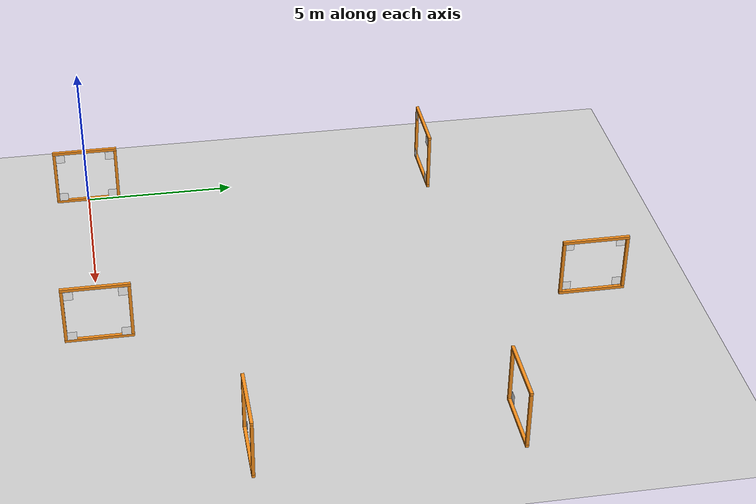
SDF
<?xml version="1.0" ?>
<sdf version="1.9">
  <world name="aruco_gate_course">
    <physics type="ode">
      <max_step_size>0.004</max_step_size>
      <real_time_factor>1.0</real_time_factor>
      <real_time_update_rate>250</real_time_update_rate>
    </physics>
    <gravity>0 0 -9.8</gravity>
    <magnetic_field>6e-06 2.3e-05 -4.2e-05</magnetic_field>
    <atmosphere type="adiabatic"/>
    <scene>
      <grid>false</grid>
      <ambient>0.4 0.4 0.4 1</ambient>
      <background>0.7 0.7 0.7 1</background>
      <shadows>true</shadows>
    </scene>

    <model name="ground_plane">
      <static>true</static>
      <link name="link">
        <collision name="collision">
          <geometry>
            <plane>
              <normal>0 0 1</normal>
              <size>1 1</size>
            </plane>
          </geometry>
          <surface>
            <friction>
              <ode/>
            </friction>
            <bounce/>
            <contact/>
          </surface>
        </collision>
        <visual name="visual">
          <geometry>
            <plane>
              <normal>0 0 1</normal>
              <size>500 500</size>
            </plane>
          </geometry>
          <material>
            <ambient>0.8 0.8 0.8 1</ambient>
            <diffuse>0.8 0.8 0.8 1</diffuse>
            <specular>0.8 0.8 0.8 1</specular>
          </material>
        </visual>
        <pose>0 0 0 0 -0 0</pose>
        <inertial>
          <pose>0 0 0 0 -0 0</pose>
          <mass>1</mass>
          <inertia>
            <ixx>1</ixx>
            <ixy>0</ixy>
            <ixz>0</ixz>
            <iyy>1</iyy>
            <iyz>0</iyz>
            <izz>1</izz>
          </inertia>
        </inertial>
        <enable_wind>false</enable_wind>
      </link>
      <pose>0 0 0 0 -0 0</pose>
      <self_collide>false</self_collide>
    </model>

    <light name="sunUTC" type="directional">
      <pose>0 0 500 0 -0 0</pose>
      <cast_shadows>true</cast_shadows>
      <intensity>1</intensity>
      <direction>0.001 0.625 -0.78</direction>
      <diffuse>0.904 0.904 0.904 1</diffuse>
      <specular>0.271 0.271 0.271 1</specular>
      <attenuation>
        <range>2000</range>
        <linear>0</linear>
        <constant>1</constant>
        <quadratic>0</quadratic>
      </attenuation>
      <spot>
        <inner_angle>0</inner_angle>
        <outer_angle>0</outer_angle>
        <falloff>0</falloff>
      </spot>
    </light>

    <spherical_coordinates>
      <surface_model>EARTH_WGS84</surface_model>
      <world_frame_orientation>ENU</world_frame_orientation>
      <latitude_deg>47.397971057728974</latitude_deg>
      <longitude_deg>8.546163739800146</longitude_deg>
      <elevation>0</elevation>
    </spherical_coordinates>

    <!-- Simple loop of ArUco gates for a basic racing line -->
    <include>
      <uri>model://aruco_gate</uri>
      <name>gate_1_start</name>
      <pose>0 0 0 0 0 0</pose>
    </include>

    <include>
      <uri>model://aruco_gate</uri>
      <name>gate_2</name>
      <pose>8 0 0 0 0 0</pose>
    </include>

    <include>
      <uri>model://aruco_gate</uri>
      <name>gate_3_turn</name>
      <pose>14 4 0 0 0 1.5708</pose>
    </include>

    <include>
      <uri>model://aruco_gate</uri>
      <name>gate_4</name>
      <pose>14 12 0 0 0 1.5708</pose>
    </include>

    <include>
      <uri>model://aruco_gate</uri>
      <name>gate_5_turn</name>
      <pose>8 16 0 0 0 3.14159</pose>
    </include>

    <include>
      <uri>model://aruco_gate</uri>
      <name>gate_6_finish</name>
      <pose>0 12 0 0 0 -1.5708</pose>
    </include>
  </world>
</sdf>

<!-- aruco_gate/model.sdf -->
<sdf version="1.9">
<model name="aruco_gate">
<static>true</static>
<link name="link">
<visual name="visual_top">
<pose>0 0 2.0 0 0 0</pose>
<geometry>
<box>
<size>0.1 2.2 0.1</size> </box>
</geometry>
<material>
<script>
<name>Gazebo/Orange</name>
<uri>file://media/materials/scripts/gazebo.material</uri>
</script>
</material>
</visual>
<collision name="collision_top">
<pose>0 0 2.0 0 0 0</pose>
<geometry>
<box><size>0.1 2.2 0.1</size></box>
</geometry>
</collision>

<visual name="visual_bottom">
<pose>0 0 0.05 0 0 0</pose>
<geometry>
<box><size>0.1 2.2 0.1</size></box>
</geometry>
<material>
<script>
<name>Gazebo/Orange</name>
<uri>file://media/materials/scripts/gazebo.material</uri>
</script>
</material>
</visual>
<collision name="collision_bottom">
<pose>0 0 0.05 0 0 0</pose>
<geometry>
<box><size>0.1 2.2 0.1</size></box>
</geometry>
</collision>

<visual name="visual_left">
<pose>0 1.05 1.025 0 0 0</pose>
<geometry>
<box><size>0.1 0.1 1.85</size></box>
</geometry>
<material>
<script>
<name>Gazebo/Orange</name>
<uri>file://media/materials/scripts/gazebo.material</uri>
</script>
</material>
</visual>
<collision name="collision_left">
<pose>0 1.05 1.025 0 0 0</pose>
<geometry>
<box><size>0.1 0.1 1.85</size></box>
</geometry>
</collision>

<visual name="visual_right">
<pose>0 -1.05 1.025 0 0 0</pose>
<geometry>
<box><size>0.1 0.1 1.85</size></box>
</geometry>
<material>
<script>
<name>Gazebo/Orange</name>
<uri>file://media/materials/scripts/gazebo.material</uri>
</script>
</material>
</visual>
<collision name="collision_right">
<pose>0 -1.05 1.025 0 0 0</pose>
<geometry>
<box><size>0.1 0.1 1.85</size></box>
</geometry>
</collision>

<visual name="marker_TL">
<pose>0.06 0.85 1.8 0 -1.57 0</pose>
<geometry>
<plane>
<normal>0 0 1</normal>
<size>0.3 0.3</size>
</plane>
</geometry>
<material>
<diffuse>1 1 1 1</diffuse>
<specular>0.1 0.1 0.1 1</specular>
<double_sided>true</double_sided>
<pbr>
<metal>
<albedo_map>model://aruco_gate/materials/textures/aruco_marker_0.png</albedo_map>
</metal>
</pbr>
</material>
</visual>

<visual name="marker_TR">
<pose>0.06 -0.85 1.8 0 -1.57 0</pose>
<geometry>
<plane>
<normal>0 0 1</normal>
<size>0.3 0.3</size>
</plane>
</geometry>
<material>
<diffuse>1 1 1 1</diffuse>
<specular>0.1 0.1 0.1 1</specular>
<double_sided>true</double_sided>
<pbr>
<metal>
<albedo_map>model://aruco_gate/materials/textures/aruco_marker_1.png</albedo_map>
</metal>
</pbr>
</material>
</visual>

<visual name="marker_BR">
<pose>0.06 -0.85 0.25 0 -1.57 0</pose>
<geometry>
<plane>
<normal>0 0 1</normal>
<size>0.3 0.3</size>
</plane>
</geometry>
<material>
<diffuse>1 1 1 1</diffuse>
<specular>0.1 0.1 0.1 1</specular>
<double_sided>true</double_sided>
<pbr>
<metal>
<albedo_map>model://aruco_gate/materials/textures/aruco_marker_2.png</albedo_map>
</metal>
</pbr>
</material>
</visual>

<visual name="marker_BL">
<pose>0.06 0.85 0.25 0 -1.57 0</pose>
<geometry>
<plane>
<normal>0 0 1</normal>
<size>0.3 0.3</size>
</plane>
</geometry>
<material>
<diffuse>1 1 1 1</diffuse>
<specular>0.1 0.1 0.1 1</specular>
<double_sided>true</double_sided>
<pbr>
<metal>
<albedo_map>model://aruco_gate/materials/textures/aruco_marker_3.png</albedo_map>
</metal>
</pbr>
</material>
</visual>

</link>
</model>
</sdf>
